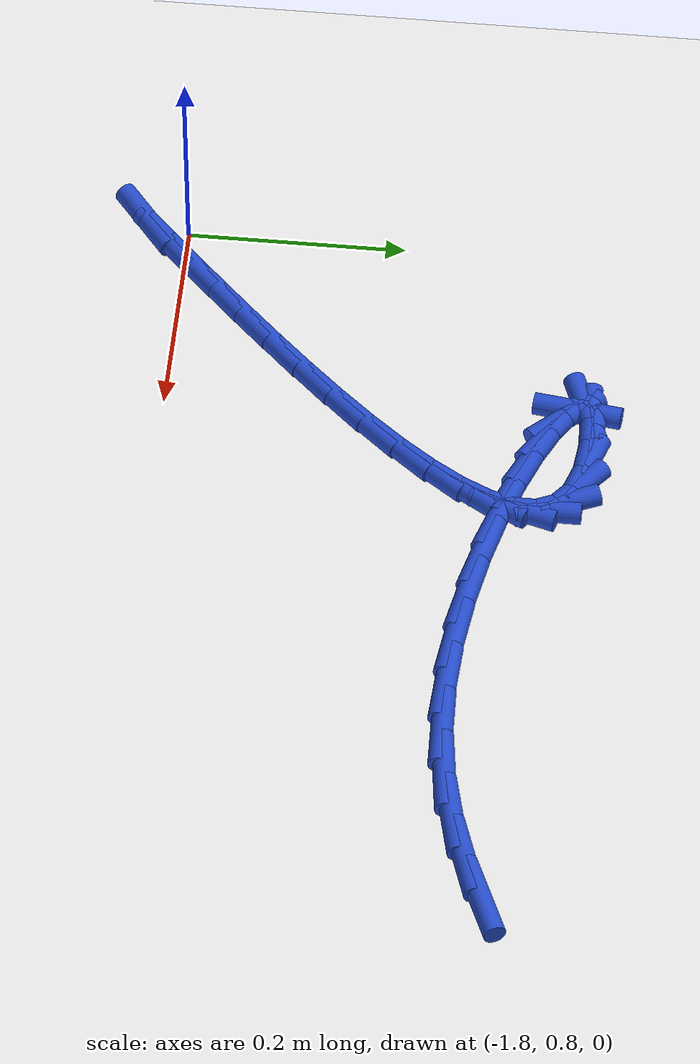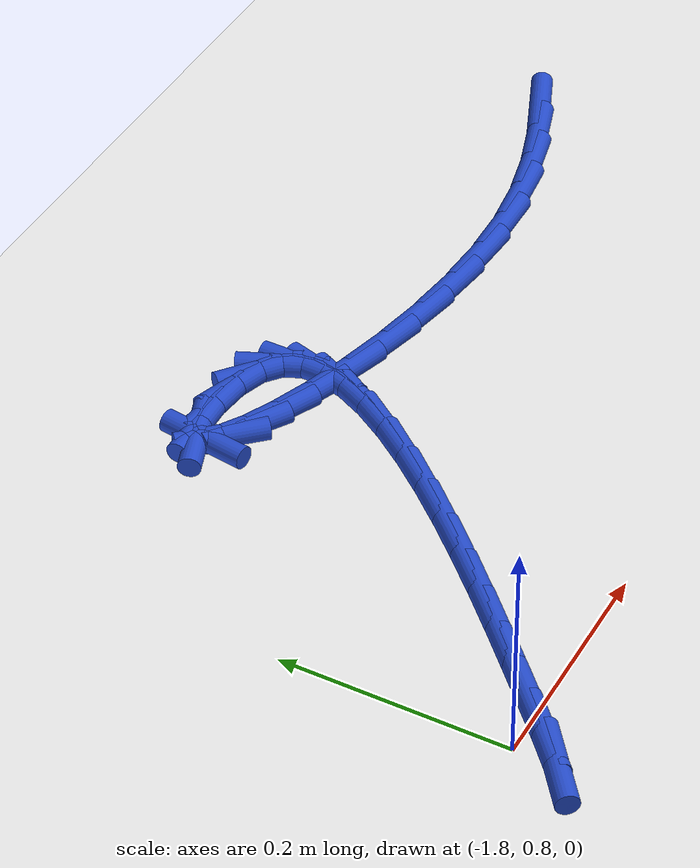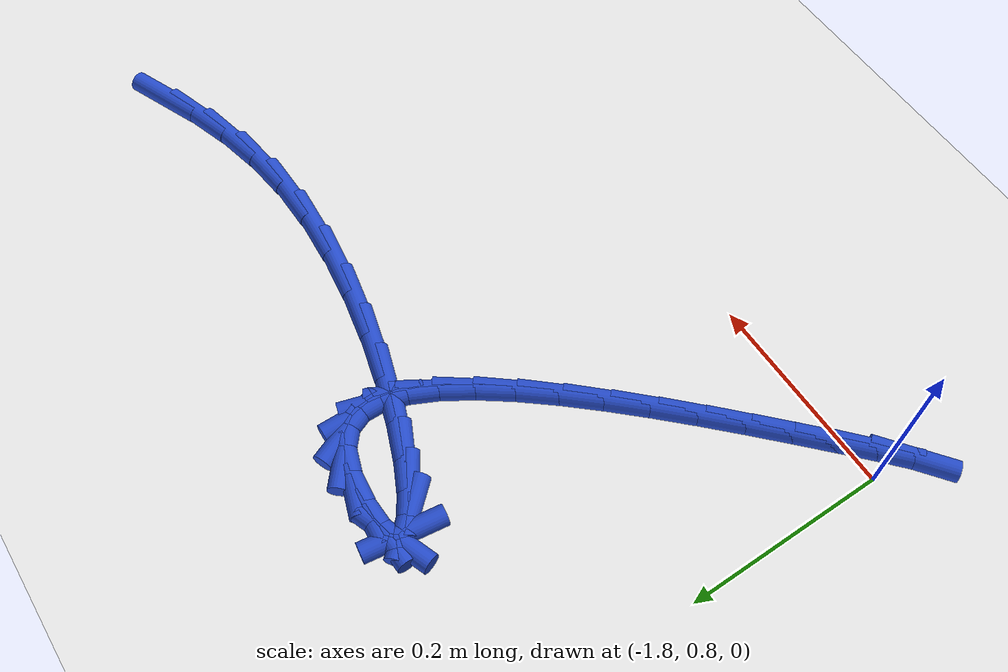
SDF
<sdf version="1.6">
 <world name="default">
  <model name="ground_plane">
   <static>1</static>
   <link name="link">
    <collision name="collision">
     <geometry><plane><normal>0 0 1</normal><size>100 100</size></plane></geometry>
     <surface><friction><ode><mu>100</mu><mu2>50</mu2></ode></friction></surface>
    </collision>
    <visual name="visual">
     <cast_shadows>0</cast_shadows>
     <geometry><plane><normal>0 0 1</normal><size>100 100</size></plane></geometry>
     <material>
      <script><uri>file://media/materials/scripts/gazebo.material</uri><name>Gazebo/WhiteGlow</name></script>
     </material>
    </visual>
   </link>
  </model>
  <model name="line">
   <link name="link_71">
    <pose>-1.071155489848515 1.1319147010002537 0.01 0 1.57 0.40106409727698217</pose>
    <collision name="collision">
     <geometry><cylinder><radius>0.01</radius><length>0.08</length></cylinder></geometry>
    </collision>
    <visual name="visual">
     <material>
      <script><name>Gazebo/Blue</name><uri>file://media/materials/scripts/gazebo.material</uri></script>
     </material>
     <geometry><cylinder><radius>0.01</radius><length>0.08</length></cylinder></geometry>
    </visual>
   </link>
   <link name="link_72">
    <pose>-1.1121465915451452 1.1145325025038129 0.01 0 1.57 0.32191724180992304</pose>
    <collision name="collision">
     <geometry><cylinder><radius>0.01</radius><length>0.08</length></cylinder></geometry>
    </collision>
    <visual name="visual">
     <material>
      <script><name>Gazebo/Blue</name><uri>file://media/materials/scripts/gazebo.material</uri></script>
     </material>
     <geometry><cylinder><radius>0.01</radius><length>0.08</length></cylinder></geometry>
    </visual>
   </link>
   <link name="link_73">
    <pose>-1.1554064434707672 1.1001045393357618 0.01 0 1.57 0.23080486381062618</pose>
    <collision name="collision">
     <geometry><cylinder><radius>0.01</radius><length>0.08</length></cylinder></geometry>
    </collision>
    <visual name="visual">
     <material>
      <script><name>Gazebo/Blue</name><uri>file://media/materials/scripts/gazebo.material</uri></script>
     </material>
     <geometry><cylinder><radius>0.01</radius><length>0.08</length></cylinder></geometry>
    </visual>
   </link>
   <link name="link_74">
    <pose>-1.200862968901608 1.089422596260198 0.01 0 1.57 0.12851327828109582</pose>
    <collision name="collision">
     <geometry><cylinder><radius>0.01</radius><length>0.08</length></cylinder></geometry>
    </collision>
    <visual name="visual">
     <material>
      <script><name>Gazebo/Blue</name><uri>file://media/materials/scripts/gazebo.material</uri></script>
     </material>
     <geometry><cylinder><radius>0.01</radius><length>0.08</length></cylinder></geometry>
    </visual>
   </link>
   <link name="link_75">
    <pose>-1.2484409251482966 1.083274312140309 0.01 0 1.57 0.026599533000685127</pose>
    <collision name="collision">
     <geometry><cylinder><radius>0.01</radius><length>0.08</length></cylinder></geometry>
    </collision>
    <visual name="visual">
     <material>
      <script><name>Gazebo/Blue</name><uri>file://media/materials/scripts/gazebo.material</uri></script>
     </material>
     <geometry><cylinder><radius>0.01</radius><length>0.08</length></cylinder></geometry>
    </visual>
   </link>
   <link name="link_76">
    <pose>-1.297695865137241 1.0819638446567752 0.01 0 1.57 -0.058235870590921515</pose>
    <collision name="collision">
     <geometry><cylinder><radius>0.01</radius><length>0.08</length></cylinder></geometry>
    </collision>
    <visual name="visual">
     <material>
      <script><name>Gazebo/Blue</name><uri>file://media/materials/scripts/gazebo.material</uri></script>
     </material>
     <geometry><cylinder><radius>0.01</radius><length>0.08</length></cylinder></geometry>
    </visual>
   </link>
   <link name="link_77">
    <pose>-1.3474736373649066 1.0848659780817163 0.01 0 1.57 -0.12938521683202794</pose>
    <collision name="collision">
     <geometry><cylinder><radius>0.01</radius><length>0.08</length></cylinder></geometry>
    </collision>
    <visual name="visual">
     <material>
      <script><name>Gazebo/Blue</name><uri>file://media/materials/scripts/gazebo.material</uri></script>
     </material>
     <geometry><cylinder><radius>0.01</radius><length>0.08</length></cylinder></geometry>
    </visual>
   </link>
   <link name="link_78">
    <pose>-1.396539565694319 1.0912500479259115 0.01 0 1.57 -0.1915006198650786</pose>
    <collision name="collision">
     <geometry><cylinder><radius>0.01</radius><length>0.08</length></cylinder></geometry>
    </collision>
    <visual name="visual">
     <material>
      <script><name>Gazebo/Blue</name><uri>file://media/materials/scripts/gazebo.material</uri></script>
     </material>
     <geometry><cylinder><radius>0.01</radius><length>0.08</length></cylinder></geometry>
    </visual>
   </link>
   <link name="link_79">
    <pose>-1.4436589739885026 1.1003853897001428 0.01 0 1.57 -0.24864666416244832</pose>
    <collision name="collision">
     <geometry><cylinder><radius>0.01</radius><length>0.08</length></cylinder></geometry>
    </collision>
    <visual name="visual">
     <material>
      <script><name>Gazebo/Blue</name><uri>file://media/materials/scripts/gazebo.material</uri></script>
     </material>
     <geometry><cylinder><radius>0.01</radius><length>0.08</length></cylinder></geometry>
    </visual>
   </link>
   <link name="link_80">
    <pose>-1.4875971861104844 1.1115413389151905 0.01 0 1.57 -0.3050769240678206</pose>
    <collision name="collision">
     <geometry><cylinder><radius>0.01</radius><length>0.08</length></cylinder></geometry>
    </collision>
    <visual name="visual">
     <material>
      <script><name>Gazebo/Blue</name><uri>file://media/materials/scripts/gazebo.material</uri></script>
     </material>
     <geometry><cylinder><radius>0.01</radius><length>0.08</length></cylinder></geometry>
    </visual>
   </link>
   <link name="link_81">
    <pose>-1.5271195259232888 1.1239872310818355 0.01 0 1.57 -0.36659654412472364</pose>
    <collision name="collision">
     <geometry><cylinder><radius>0.01</radius><length>0.08</length></cylinder></geometry>
    </collision>
    <visual name="visual">
     <material>
      <script><name>Gazebo/Blue</name><uri>file://media/materials/scripts/gazebo.material</uri></script>
     </material>
     <geometry><cylinder><radius>0.01</radius><length>0.08</length></cylinder></geometry>
    </visual>
   </link>
   <link name="link_82">
    <pose>-1.5609913172899423 1.1369924017108584 0.01 0 1.57 -0.44390674574400135</pose>
    <collision name="collision">
     <geometry><cylinder><radius>0.01</radius><length>0.08</length></cylinder></geometry>
    </collision>
    <visual name="visual">
     <material>
      <script><name>Gazebo/Blue</name><uri>file://media/materials/scripts/gazebo.material</uri></script>
     </material>
     <geometry><cylinder><radius>0.01</radius><length>0.08</length></cylinder></geometry>
    </visual>
   </link>
   <link name="link_83">
    <pose>-1.5879778840734695 1.14982618631304 0.01 0 1.57 -0.5639201812960966</pose>
    <collision name="collision">
     <geometry><cylinder><radius>0.01</radius><length>0.08</length></cylinder></geometry>
    </collision>
    <visual name="visual">
     <material>
      <script><name>Gazebo/Blue</name><uri>file://media/materials/scripts/gazebo.material</uri></script>
     </material>
     <geometry><cylinder><radius>0.01</radius><length>0.08</length></cylinder></geometry>
    </visual>
   </link>
   <link name="link_84">
    <pose>-1.606844550136896 1.1617579203991606 0.01 0 1.57 -0.8250989403229553</pose>
    <collision name="collision">
     <geometry><cylinder><radius>0.01</radius><length>0.08</length></cylinder></geometry>
    </collision>
    <visual name="visual">
     <material>
      <script><name>Gazebo/Blue</name><uri>file://media/materials/scripts/gazebo.material</uri></script>
     </material>
     <geometry><cylinder><radius>0.01</radius><length>0.08</length></cylinder></geometry>
    </visual>
   </link>
   <link name="link_85">
    <pose>-1.6163566393432467 1.1720569394800011 0.01 0 1.57 1.4358833813622178</pose>
    <collision name="collision">
     <geometry><cylinder><radius>0.01</radius><length>0.08</length></cylinder></geometry>
    </collision>
    <visual name="visual">
     <material>
      <script><name>Gazebo/Blue</name><uri>file://media/materials/scripts/gazebo.material</uri></script>
     </material>
     <geometry><cylinder><radius>0.01</radius><length>0.08</length></cylinder></geometry>
    </visual>
   </link>
   <link name="link_86">
    <pose>-1.615279475555548 1.1799925790663428 0.01 0 1.57 0.35902111773574996</pose>
    <collision name="collision">
     <geometry><cylinder><radius>0.01</radius><length>0.08</length></cylinder></geometry>
    </collision>
    <visual name="visual">
     <material>
      <script><name>Gazebo/Blue</name><uri>file://media/materials/scripts/gazebo.material</uri></script>
     </material>
     <geometry><cylinder><radius>0.01</radius><length>0.08</length></cylinder></geometry>
    </visual>
   </link>
   <link name="link_87">
    <pose>-1.6023783826368245 1.1848341746689655 0.01 0 1.57 0.04044553245227967</pose>
    <collision name="collision">
     <geometry><cylinder><radius>0.01</radius><length>0.08</length></cylinder></geometry>
    </collision>
    <visual name="visual">
     <material>
      <script><name>Gazebo/Blue</name><uri>file://media/materials/scripts/gazebo.material</uri></script>
     </material>
     <geometry><cylinder><radius>0.01</radius><length>0.08</length></cylinder></geometry>
    </visual>
   </link>
   <link name="link_88">
    <pose>-1.5770045467909755 1.185860992935017 0.01 0 1.57 -0.10934180423126734</pose>
    <collision name="collision">
     <geometry><cylinder><radius>0.01</radius><length>0.08</length></cylinder></geometry>
    </collision>
    <visual name="visual">
     <material>
      <script><name>Gazebo/Blue</name><uri>file://media/materials/scripts/gazebo.material</uri></script>
     </material>
     <geometry><cylinder><radius>0.01</radius><length>0.08</length></cylinder></geometry>
    </visual>
   </link>
   <link name="link_89">
    <pose>-1.5462365171797285 1.1824832894657678 0.01 0 1.57 -0.3199962306887712</pose>
    <collision name="collision">
     <geometry><cylinder><radius>0.01</radius><length>0.08</length></cylinder></geometry>
    </collision>
    <visual name="visual">
     <material>
      <script><name>Gazebo/Blue</name><uri>file://media/materials/scripts/gazebo.material</uri></script>
     </material>
     <geometry><cylinder><radius>0.01</radius><length>0.08</length></cylinder></geometry>
    </visual>
   </link>
   <link name="link_90">
    <pose>-1.5215011064763073 1.1742863398991352 0.01 0 1.57 -0.6865697448410042</pose>
    <collision name="collision">
     <geometry><cylinder><radius>0.01</radius><length>0.08</length></cylinder></geometry>
    </collision>
    <visual name="visual">
     <material>
      <script><name>Gazebo/Blue</name><uri>file://media/materials/scripts/gazebo.material</uri></script>
     </material>
     <geometry><cylinder><radius>0.01</radius><length>0.08</length></cylinder></geometry>
    </visual>
   </link>
   <link name="link_91">
    <pose>-1.5058828750123177 1.1614858640419299 0.01 0 1.57 -1.1626157298871223</pose>
    <collision name="collision">
     <geometry><cylinder><radius>0.01</radius><length>0.08</length></cylinder></geometry>
    </collision>
    <visual name="visual">
     <material>
      <script><name>Gazebo/Blue</name><uri>file://media/materials/scripts/gazebo.material</uri></script>
     </material>
     <geometry><cylinder><radius>0.01</radius><length>0.08</length></cylinder></geometry>
    </visual>
   </link>
   <link name="link_92">
    <pose>-1.4985745441587248 1.14458680982827 0.01 0 1.57 1.5623219765023986</pose>
    <collision name="collision">
     <geometry><cylinder><radius>0.01</radius><length>0.08</length></cylinder></geometry>
    </collision>
    <visual name="visual">
     <material>
      <script><name>Gazebo/Blue</name><uri>file://media/materials/scripts/gazebo.material</uri></script>
     </material>
     <geometry><cylinder><radius>0.01</radius><length>0.08</length></cylinder></geometry>
    </visual>
   </link>
   <link name="link_93">
    <pose>-1.498748197506376 1.1240956589213293 0.01 0 1.57 1.2889122293166329</pose>
    <collision name="collision">
     <geometry><cylinder><radius>0.01</radius><length>0.08</length></cylinder></geometry>
    </collision>
    <visual name="visual">
     <material>
      <script><name>Gazebo/Blue</name><uri>file://media/materials/scripts/gazebo.material</uri></script>
     </material>
     <geometry><cylinder><radius>0.01</radius><length>0.08</length></cylinder></geometry>
    </visual>
   </link>
   <link name="link_94">
    <pose>-1.5055759186461204 1.1005188929842822 0.01 0 1.57 1.1202033982301423</pose>
    <collision name="collision">
     <geometry><cylinder><radius>0.01</radius><length>0.08</length></cylinder></geometry>
    </collision>
    <visual name="visual">
     <material>
      <script><name>Gazebo/Blue</name><uri>file://media/materials/scripts/gazebo.material</uri></script>
     </material>
     <geometry><cylinder><radius>0.01</radius><length>0.08</length></cylinder></geometry>
    </visual>
   </link>
   <link name="link_95">
    <pose>-1.5182297911688052 1.0743629936803012 0.01 0 1.57 1.0119610753167925</pose>
    <collision name="collision">
     <geometry><cylinder><radius>0.01</radius><length>0.08</length></cylinder></geometry>
    </collision>
    <visual name="visual">
     <material>
      <script><name>Gazebo/Blue</name><uri>file://media/materials/scripts/gazebo.material</uri></script>
     </material>
     <geometry><cylinder><radius>0.01</radius><length>0.08</length></cylinder></geometry>
    </visual>
   </link>
   <link name="link_96">
    <pose>-1.5358818986652787 1.0461344426725614 0.01 0 1.57 0.9386378262210514</pose>
    <collision name="collision">
     <geometry><cylinder><radius>0.01</radius><length>0.08</length></cylinder></geometry>
    </collision>
    <visual name="visual">
     <material>
      <script><name>Gazebo/Blue</name><uri>file://media/materials/scripts/gazebo.material</uri></script>
     </material>
     <geometry><cylinder><radius>0.01</radius><length>0.08</length></cylinder></geometry>
    </visual>
   </link>
   <link name="link_97">
    <pose>-1.5577043247263889 1.0163397216242362 0.01 0 1.57 0.8866158558184885</pose>
    <collision name="collision">
     <geometry><cylinder><radius>0.01</radius><length>0.08</length></cylinder></geometry>
    </collision>
    <visual name="visual">
     <material>
      <script><name>Gazebo/Blue</name><uri>file://media/materials/scripts/gazebo.material</uri></script>
     </material>
     <geometry><cylinder><radius>0.01</radius><length>0.08</length></cylinder></geometry>
    </visual>
   </link>
   <link name="link_98">
    <pose>-1.5828691529429832 0.9854853121984997 0.01 0 1.57 0.8484132153327021</pose>
    <collision name="collision">
     <geometry><cylinder><radius>0.01</radius><length>0.08</length></cylinder></geometry>
    </collision>
    <visual name="visual">
     <material>
      <script><name>Gazebo/Blue</name><uri>file://media/materials/scripts/gazebo.material</uri></script>
     </material>
     <geometry><cylinder><radius>0.01</radius><length>0.08</length></cylinder></geometry>
    </visual>
   </link>
   <link name="link_99">
    <pose>-1.6105484669059107 0.9540776960585254 0.01 0 1.57 0.8197228908387896</pose>
    <collision name="collision">
     <geometry><cylinder><radius>0.01</radius><length>0.08</length></cylinder></geometry>
    </collision>
    <visual name="visual">
     <material>
      <script><name>Gazebo/Blue</name><uri>file://media/materials/scripts/gazebo.material</uri></script>
     </material>
     <geometry><cylinder><radius>0.01</radius><length>0.08</length></cylinder></geometry>
    </visual>
   </link>
   <link name="link_100">
    <pose>-1.6399143502060196 0.9226233548674873 0.01 0 1.57 0.7979760595204933</pose>
    <collision name="collision">
     <geometry><cylinder><radius>0.01</radius><length>0.08</length></cylinder></geometry>
    </collision>
    <visual name="visual">
     <material>
      <script><name>Gazebo/Blue</name><uri>file://media/materials/scripts/gazebo.material</uri></script>
     </material>
     <geometry><cylinder><radius>0.01</radius><length>0.08</length></cylinder></geometry>
    </visual>
   </link>
   <link name="link_101">
    <pose>-1.6701388864341564 0.8916287702885595 0.01 0 1.57 0.7816338676385163</pose>
    <collision name="collision">
     <geometry><cylinder><radius>0.01</radius><length>0.08</length></cylinder></geometry>
    </collision>
    <visual name="visual">
     <material>
      <script><name>Gazebo/Blue</name><uri>file://media/materials/scripts/gazebo.material</uri></script>
     </material>
     <geometry><cylinder><radius>0.01</radius><length>0.08</length></cylinder></geometry>
    </visual>
   </link>
   <link name="link_102">
    <pose>-1.7003941591811702 0.8616004239849155 0.01 0 1.57 0.7698433305456723</pose>
    <collision name="collision">
     <geometry><cylinder><radius>0.01</radius><length>0.08</length></cylinder></geometry>
    </collision>
    <visual name="visual">
     <material>
      <script><name>Gazebo/Blue</name><uri>file://media/materials/scripts/gazebo.material</uri></script>
     </material>
     <geometry><cylinder><radius>0.01</radius><length>0.08</length></cylinder></geometry>
    </visual>
   </link>
   <link name="link_103">
    <pose>-1.7298522520379094 0.8330447976197297 0.01 0 1.57 0.7623075215573222</pose>
    <collision name="collision">
     <geometry><cylinder><radius>0.01</radius><length>0.08</length></cylinder></geometry>
    </collision>
    <visual name="visual">
     <material>
      <script><name>Gazebo/Blue</name><uri>file://media/materials/scripts/gazebo.material</uri></script>
     </material>
     <geometry><cylinder><radius>0.01</radius><length>0.08</length></cylinder></geometry>
    </visual>
   </link>
   <link name="link_104">
    <pose>-1.7576852485952212 0.806468372856175 0.01 0 1.57 0.7589158713138348</pose>
    <collision name="collision">
     <geometry><cylinder><radius>0.01</radius><length>0.08</length></cylinder></geometry>
    </collision>
    <visual name="visual">
     <material>
      <script><name>Gazebo/Blue</name><uri>file://media/materials/scripts/gazebo.material</uri></script>
     </material>
     <geometry><cylinder><radius>0.01</radius><length>0.08</length></cylinder></geometry>
    </visual>
   </link>
   <link name="link_105">
    <pose>-1.7830872639056339 0.7823773530445015 0.01 0 1.57 0.7372895274767448</pose>
    <collision name="collision">
     <geometry><cylinder><radius>0.01</radius><length>0.08</length></cylinder></geometry>
    </collision>
    <visual name="visual">
     <material>
      <script><name>Gazebo/Blue</name><uri>file://media/materials/scripts/gazebo.material</uri></script>
     </material>
     <geometry><cylinder><radius>0.01</radius><length>0.08</length></cylinder></geometry>
    </visual>
   </link>
   <link name="link_106">
    <pose>-1.8063362123127233 0.7612642504165584 0.01 0 1.57 0.6563607282078129</pose>
    <collision name="collision">
     <geometry><cylinder><radius>0.01</radius><length>0.08</length></cylinder></geometry>
    </collision>
    <visual name="visual">
     <material>
      <script><name>Gazebo/Blue</name><uri>file://media/materials/scripts/gazebo.material</uri></script>
     </material>
     <geometry><cylinder><radius>0.01</radius><length>0.08</length></cylinder></geometry>
    </visual>
   </link>
  </model>
 </world>
</sdf>
